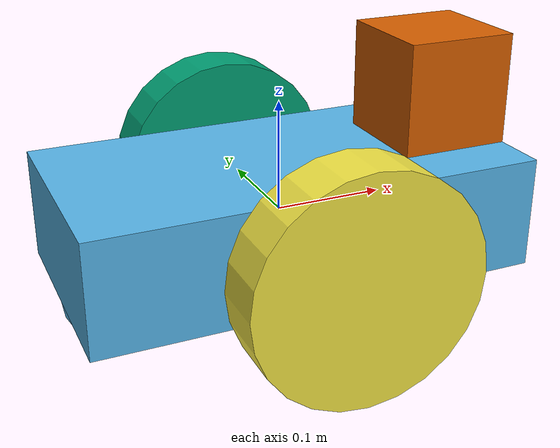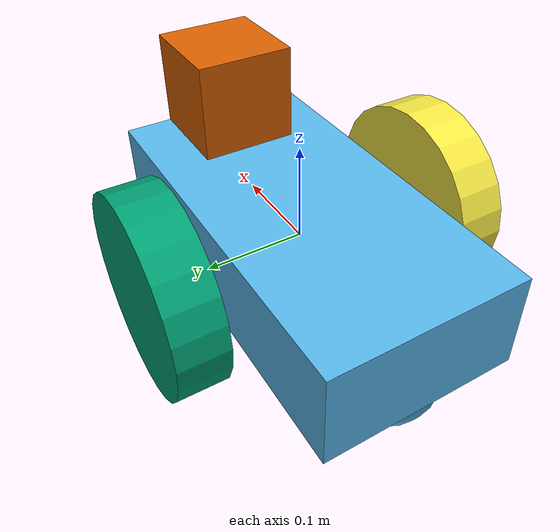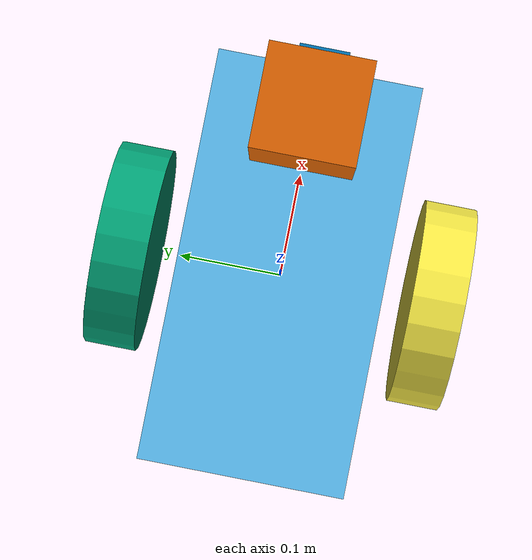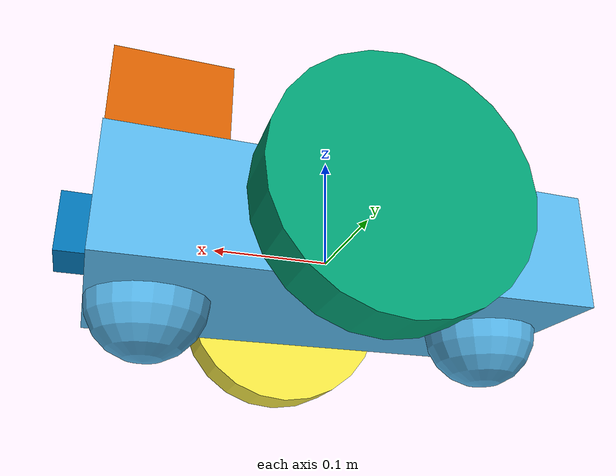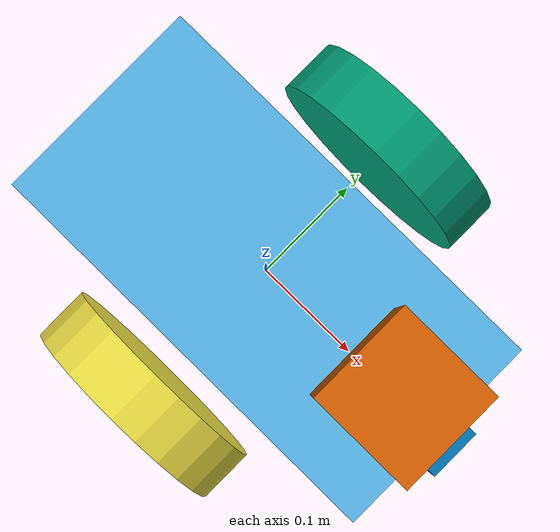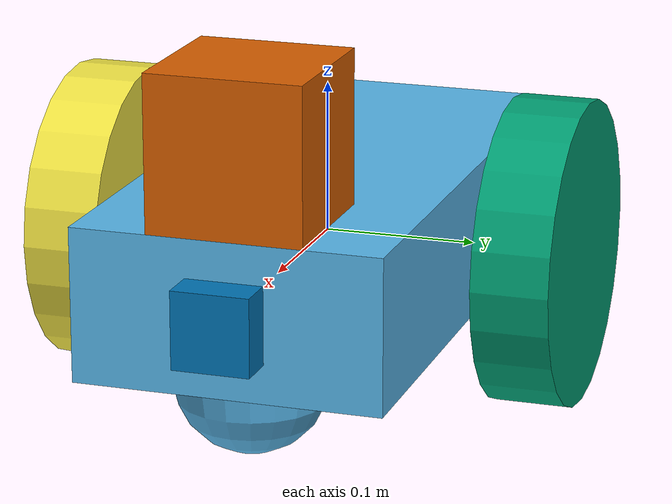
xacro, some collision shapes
<?xml version='1.0'?>

<robot name="my_robot_2" xmlns:xacro="http://www.ros.org/wiki/xacro">
  <xacro:include filename="$(find my_robot_2)/urdf/my_robot_2.gazebo" />
  <link name="robot_footprint"></link>

  <joint name="robot_footprint_joint" type="fixed">
    <origin xyz="0 0 0" rpy="0 0 0" />
    <parent link="robot_footprint"/>
    <child link="chassis" />
  </joint>

  <joint type="continuous" name="left_wheel_hinge">
    <origin xyz="0 0.15 0" rpy="0 0 0"/>
    <child link="left_wheel"/>
    <parent link="chassis"/>
    <axis xyz="0 1 0" rpy="0 0 0"/>
    <limit effort="10000" velocity="1000"/>
    <dynamics damping="1.0" friction="1.0"/>
  </joint>

  <joint type="continuous" name="right_wheel_hinge">
    <origin xyz="0 -0.15 0" rpy="0 0 0"/>
    <child link="right_wheel"/>
    <parent link="chassis"/>
    <axis xyz="0 1 0" rpy="0 0 0"/>
    <limit effort="10000" velocity="1000"/>
    <dynamics damping="1.0" friction="1.0"/>
  </joint>

  <joint type="fixed" name="camera_join">
    <origin xyz="0.2 0 0" rpy="0 0 0"/>
    <child link="camera"/>
    <parent link="chassis"/>
    <axis xyz="0 1 0" rpy="0 0 0"/>
  </joint>

  <joint name="camera_optical_joint" type="fixed">
    <!--origin xyz="0 0 0" rpy="0 0 0"/-->
    <origin xyz="0 0 0" rpy="-1.5707 0 -1.5707"/>
    <parent link="camera"/>
    <child link="camera_link_optical"/>
  </joint>

  <joint type="fixed" name="hokuyo_join">
    <origin xyz="0.15 0 0.1" rpy="0 0 0"/>
    <child link="hokuyo"/>
    <parent link="chassis"/>
    <axis xyz="0 1 0" rpy="0 0 0"/>
  </joint>

  <link name='chassis'>
    <pose>0 0 0.1 0 0 0</pose>

    <inertial>
      <mass value="15.0"/>
      <origin xyz="0.0 0 0" rpy=" 0 0 0"/>
      <inertia
          ixx="0.1" ixy="0" ixz="0"
          iyy="0.1" iyz="0"
          izz="0.1"
      />
    </inertial>

    <collision name='collision'>
      <origin xyz="0 0 0" rpy=" 0 0 0"/>
      <geometry>
        <box size=".4 .2 .1"/>
      </geometry>
    </collision>

    <visual name='chassis_visual'>
      <origin xyz="0 0 0" rpy=" 0 0 0"/>
      <geometry>
        <box size=".4 .2 .1"/>
      </geometry>
    </visual>

    <collision name='back_caster_collision'>
      <origin xyz="-0.15 0 -0.05" rpy=" 0 0 0"/>
      <geometry>
        <sphere radius="0.0499"/>
      </geometry>
    </collision>

    <visual name='back_caster_visual'>
      <origin xyz="-0.15 0 -0.05" rpy=" 0 0 0"/>
      <geometry>
        <sphere radius="0.05"/>
      </geometry>
    </visual>

    <collision name='front_caster_collision'>
      <origin xyz="0.15 0 -0.05" rpy=" 0 0 0"/>
      <geometry>
        <sphere radius="0.0499"/>
      </geometry>
    </collision>

    <visual name='front_caster_visual'>
      <origin xyz="0.15 0 -0.05" rpy=" 0 0 0"/>
      <geometry>
        <sphere radius="0.05"/>
      </geometry>
    </visual>

  </link>

  <link name="left_wheel">

    <inertial>
      <mass value="5.0"/>
      <origin xyz="0.0 0 0" rpy=" 0 1.5707 1.5707"/>
      <inertia
          ixx="0.1" ixy="0" ixz="0"
          iyy="0.1" iyz="0"
          izz="0.1"
      />
    </inertial>

    <collision name='left_wheel_collision'>
      <origin xyz="0 0 0" rpy=" 0 1.5707 1.5707"/>
      <geometry>
        <cylinder radius="0.1" length="0.05"/>
      </geometry>
    </collision>

    <visual name='left_wheel_visual'>
      <origin xyz="0 0 0" rpy=" 0 1.5707 1.5707"/>
      <geometry>
        <cylinder radius="0.1" length="0.05"/>
      </geometry>
    </visual>

    <collision name='rigth_wheel_collision'>
      <origin xyz="0 0 0" rpy=" 0 1.5707 1.5707"/>
      <geometry>
        <cylinder radius="0.1" length="0.05"/>
      </geometry>
    </collision>

    <visual name='right_wheel_visual'>
      <origin xyz="0 0 0" rpy=" 0 1.5707 1.5707"/>
      <geometry>
        <cylinder radius="0.1" length="0.05"/>
      </geometry>
      <material name="green">
	<color rgba="0 1 0 0"/>
      </material>
    </visual>
  </link>

  <link name="right_wheel">

    <inertial>
      <mass value="5.0"/>
      <origin xyz="0.0 0 0" rpy=" 0 1.5707 1.5707"/>
      <inertia
          ixx="0.1" ixy="0" ixz="0"
          iyy="0.1" iyz="0"
          izz="0.1"
      />
    </inertial>

    <collision name='rigth_wheel_collision'>
      <origin xyz="0 0 0" rpy=" 0 1.5707 1.5707"/>
      <geometry>
        <cylinder radius="0.1" length="0.05"/>
      </geometry>
    </collision>

    <visual name='right_wheel_visual'>
      <origin xyz="0 0 0" rpy=" 0 1.5707 1.5707"/>
      <geometry>
        <cylinder radius="0.1" length="0.05"/>
      </geometry>
    </visual>
  </link>

  <link name="camera">

    <inertial>
      <mass value="0.1"/>
      <origin xyz="0.0 0 0" rpy=" 0 0 0"/>
      <inertia
          ixx="1e-6" ixy="0" ixz="0"
          iyy="1e-6" iyz="0"
          izz="1e-6"
      />
    </inertial>

    <collision name='camera_collision'>
      <origin xyz="0 0 0" rpy=" 0 0 0"/>
      <geometry>
        <box size="0.05 0.05 0.05" />
      </geometry>
    </collision>

    <visual name='camera_visual'>
      <origin xyz="0 0 0" rpy=" 0 0 0"/>
      <geometry>
        <box size="0.05 0.05 0.05" />
      </geometry>
    </visual>
  </link>

  <link name="hokuyo">
    <inertial>
      <mass value="1e-5"/>
      <origin xyz="0.0 0 0" rpy=" 0 0 0"/>
      <inertia
          ixx="1e-6" ixy="0" ixz="0"
          iyy="1e-6" iyz="0"
          izz="1e-6"
      />
    </inertial>
    <collision name='hokuyo_collision'>
      <origin xyz="0 0 0" rpy=" 0 0 0"/>
      <geometry>
        <box size="0.1 0.1 0.1" />
      </geometry>
    </collision>
    <visual name='hokuyo_visual'>
      <origin xyz="0 0 0" rpy=" 0 0 0"/>
      <geometry>
	<mesh filename="package://my_robot_2/meshes/hokuyo.dae"/>
      </geometry>
    </visual>
  </link>

  <link name="camera_link_optical">
  </link>
</robot>
